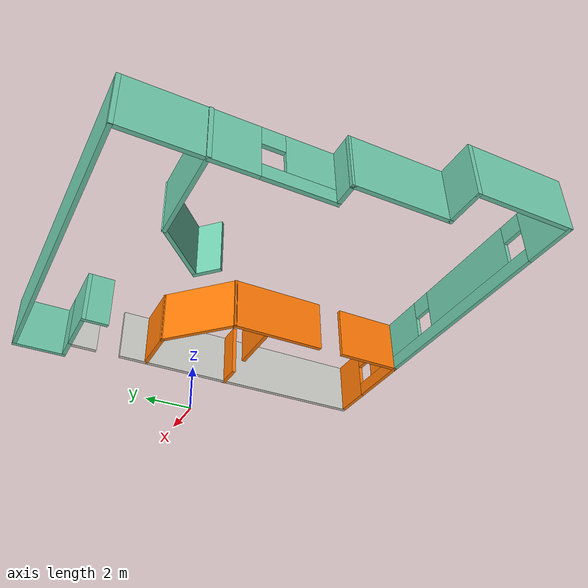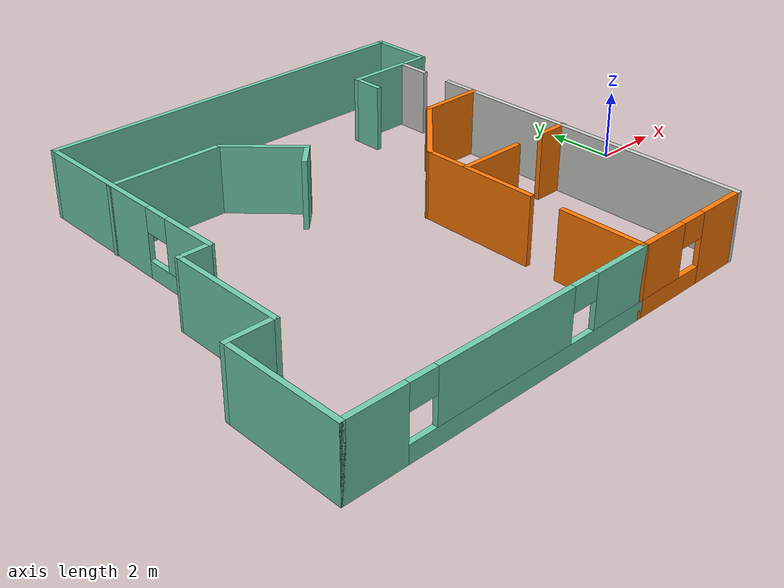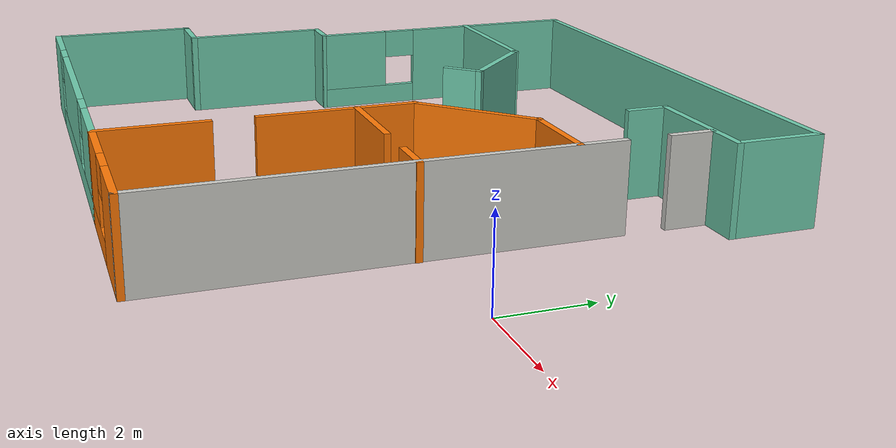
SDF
<?xml version='1.0'?>
<sdf version='1.6'>
  <model name='room'>
    <pose frame=''>-8.884 0.941221 0 0 -0 0</pose>
    <link name='Wall_0'>
      <collision name='Wall_0_Collision'>
        <geometry>
          <box>
            <size>12 0.15 2</size>
          </box>
        </geometry>
        <pose frame=''>0 0 1 0 -0 0</pose>
      </collision>
      <visual name='Wall_0_Visual'>
        <pose frame=''>0 0 1 0 -0 0</pose>
        <geometry>
          <box>
            <size>12 0.15 2</size>
          </box>
        </geometry>
        <material>
          <script>
            <uri>file://media/materials/scripts/gazebo.material</uri>
            <name>Gazebo/Grey</name>
          </script>
          <ambient>0.435294 0.796078 0.67451 1</ambient>
        </material>
        <meta>
          <layer>0</layer>
        </meta>
      </visual>
      <pose frame=''>1.071 6.85 0 0 0 -3.7e-05</pose>
    </link>
    <link name='Wall_14'>
      <collision name='Wall_14_Collision'>
        <geometry>
          <box>
            <size>2 0.15 2</size>
          </box>
        </geometry>
        <pose frame=''>0 0 1 0 -0 0</pose>
      </collision>
      <visual name='Wall_14_Visual'>
        <pose frame=''>0 0 1 0 -0 0</pose>
        <geometry>
          <box>
            <size>2 0.15 2</size>
          </box>
        </geometry>
        <material>
          <script>
            <uri>file://media/materials/scripts/gazebo.material</uri>
            <name>Gazebo/Grey</name>
          </script>
          <ambient>0.435294 0.796078 0.67451 1</ambient>
        </material>
        <meta>
          <layer>0</layer>
        </meta>
      </visual>
      <pose frame=''>6.996 5.92478 0 0 0 -1.5708</pose>
    </link>
    <link name='Wall_15'>
      <collision name='Wall_15_Collision'>
        <geometry>
          <box>
            <size>1 0.15 2</size>
          </box>
        </geometry>
        <pose frame=''>0 0 1 0 -0 0</pose>
      </collision>
      <visual name='Wall_15_Visual'>
        <pose frame=''>0 0 1 0 -0 0</pose>
        <geometry>
          <box>
            <size>1 0.15 2</size>
          </box>
        </geometry>
        <material>
          <script>
            <uri>file://media/materials/scripts/gazebo.material</uri>
            <name>Gazebo/Grey</name>
          </script>
          <ambient>0.435294 0.796078 0.67451 1</ambient>
        </material>
        <meta>
          <layer>0</layer>
        </meta>
      </visual>
      <pose frame=''>6.571 4.99978 0 0 -0 3.14159</pose>
    </link>
    <link name='Wall_17'>
      <pose frame=''>6.146 -0.925221 0 0 0 -1.5708</pose>
      <visual name='Wall_17_Visual_0'>
        <pose frame=''>-5.45484 0 1 0 -0 0</pose>
        <geometry>
          <box>
            <size>1.09032 0.15 2</size>
          </box>
        </geometry>
        <material>
          <script>
            <uri>file://media/materials/scripts/gazebo.material</uri>
            <name>Gazebo/CeilingTiled</name>
          </script>
          <ambient>1 1 1 1</ambient>
        </material>
        <meta>
          <layer>0</layer>
        </meta>
      </visual>
      <collision name='Wall_17_Collision_0'>
        <geometry>
          <box>
            <size>1.09032 0.15 2</size>
          </box>
        </geometry>
        <pose frame=''>-5.45484 0 1 0 -0 0</pose>
      </collision>
      <visual name='Wall_17_Visual_1'>
        <pose frame=''>0.995159 0 1 0 -0 0</pose>
        <geometry>
          <box>
            <size>10.0097 0.15 2</size>
          </box>
        </geometry>
        <material>
          <script>
            <uri>file://media/materials/scripts/gazebo.material</uri>
            <name>Gazebo/CeilingTiled</name>
          </script>
          <ambient>1 1 1 1</ambient>
        </material>
        <meta>
          <layer>0</layer>
        </meta>
      </visual>
      <collision name='Wall_17_Collision_1'>
        <geometry>
          <box>
            <size>10.0097 0.15 2</size>
          </box>
        </geometry>
        <pose frame=''>0.995159 0 1 0 -0 0</pose>
      </collision>
    </link>
    <link name='Wall_20'>
      <pose frame=''>4.221 -6.85022 0 0 -0 3.14159</pose>
      <visual name='Wall_20_Visual_0'>
        <pose frame=''>-1.19818 0 1 0 -0 0</pose>
        <geometry>
          <box>
            <size>1.60364 0.15 2</size>
          </box>
        </geometry>
        <material>
          <script>
            <uri>file://media/materials/scripts/gazebo.material</uri>
            <name>Gazebo/Grey</name>
          </script>
          <ambient>0.996078 0.47451 0.0196078 1</ambient>
        </material>
        <meta>
          <layer>0</layer>
        </meta>
      </visual>
      <collision name='Wall_20_Collision_0'>
        <geometry>
          <box>
            <size>1.60364 0.15 2</size>
          </box>
        </geometry>
        <pose frame=''>-1.19818 0 1 0 -0 0</pose>
      </collision>
      <visual name='Wall_20_Visual_1'>
        <pose frame=''>0.801822 0 0.25 0 -0 0</pose>
        <geometry>
          <box>
            <size>2.39636 0.15 0.5</size>
          </box>
        </geometry>
        <material>
          <script>
            <uri>file://media/materials/scripts/gazebo.material</uri>
            <name>Gazebo/Grey</name>
          </script>
          <ambient>0.996078 0.47451 0.0196078 1</ambient>
        </material>
        <meta>
          <layer>0</layer>
        </meta>
      </visual>
      <collision name='Wall_20_Collision_1'>
        <geometry>
          <box>
            <size>2.39636 0.15 0.5</size>
          </box>
        </geometry>
        <pose frame=''>0.801822 0 0.25 0 -0 0</pose>
      </collision>
      <visual name='Wall_20_Visual_2'>
        <pose frame=''>1.20182 0 1.25 0 -0 0</pose>
        <geometry>
          <box>
            <size>1.59636 0.15 1.5</size>
          </box>
        </geometry>
        <material>
          <script>
            <uri>file://media/materials/scripts/gazebo.material</uri>
            <name>Gazebo/Grey</name>
          </script>
          <ambient>0.996078 0.47451 0.0196078 1</ambient>
        </material>
        <meta>
          <layer>0</layer>
        </meta>
      </visual>
      <collision name='Wall_20_Collision_2'>
        <geometry>
          <box>
            <size>1.59636 0.15 1.5</size>
          </box>
        </geometry>
        <pose frame=''>1.20182 0 1.25 0 -0 0</pose>
      </collision>
      <visual name='Wall_20_Visual_3'>
        <pose frame=''>0.003644 0 1.65 0 -0 0</pose>
        <geometry>
          <box>
            <size>0.8 0.15 0.7</size>
          </box>
        </geometry>
        <material>
          <script>
            <uri>file://media/materials/scripts/gazebo.material</uri>
            <name>Gazebo/Grey</name>
          </script>
          <ambient>0.996078 0.47451 0.0196078 1</ambient>
        </material>
        <meta>
          <layer>0</layer>
        </meta>
      </visual>
      <collision name='Wall_20_Collision_3'>
        <geometry>
          <box>
            <size>0.8 0.15 0.7</size>
          </box>
        </geometry>
        <pose frame=''>0.003644 0 1.65 0 -0 0</pose>
      </collision>
    </link>
    <link name='Wall_21'>
      <pose frame=''>2.296 -3.42522 0 0 -0 1.5708</pose>
      <visual name='Wall_21_Visual_0'>
        <pose frame=''>-2.24804 0 1 0 -0 0</pose>
        <geometry>
          <box>
            <size>2.50392 0.15 2</size>
          </box>
        </geometry>
        <material>
          <script>
            <uri>file://media/materials/scripts/gazebo.material</uri>
            <name>Gazebo/Grey</name>
          </script>
          <ambient>0.996078 0.47451 0.0196078 1</ambient>
        </material>
        <meta>
          <layer>0</layer>
        </meta>
      </visual>
      <collision name='Wall_21_Collision_0'>
        <geometry>
          <box>
            <size>2.50392 0.15 2</size>
          </box>
        </geometry>
        <pose frame=''>-2.24804 0 1 0 -0 0</pose>
      </collision>
      <visual name='Wall_21_Visual_1'>
        <pose frame=''>1.70196 0 1 0 -0 0</pose>
        <geometry>
          <box>
            <size>3.59608 0.15 2</size>
          </box>
        </geometry>
        <material>
          <script>
            <uri>file://media/materials/scripts/gazebo.material</uri>
            <name>Gazebo/Grey</name>
          </script>
          <ambient>0.996078 0.47451 0.0196078 1</ambient>
        </material>
        <meta>
          <layer>0</layer>
        </meta>
      </visual>
      <collision name='Wall_21_Collision_1'>
        <geometry>
          <box>
            <size>3.59608 0.15 2</size>
          </box>
        </geometry>
        <pose frame=''>1.70196 0 1 0 -0 0</pose>
      </collision>
    </link>
    <link name='Wall_23'>
      <collision name='Wall_23_Collision'>
        <geometry>
          <box>
            <size>3 0.15 2</size>
          </box>
        </geometry>
        <pose frame=''>0 0 1 0 -0 0</pose>
      </collision>
      <visual name='Wall_23_Visual'>
        <pose frame=''>0 0 1 0 -0 0</pose>
        <geometry>
          <box>
            <size>3 0.15 2</size>
          </box>
        </geometry>
        <material>
          <script>
            <uri>file://media/materials/scripts/gazebo.material</uri>
            <name>Gazebo/Grey</name>
          </script>
          <ambient>0.996078 0.47451 0.0196078 1</ambient>
        </material>
        <meta>
          <layer>0</layer>
        </meta>
      </visual>
      <pose frame=''>3.3035 1.00728 0 0 -0 0.785398</pose>
    </link>
    <link name='Wall_25'>
      <collision name='Wall_25_Collision'>
        <geometry>
          <box>
            <size>1.98 0.15 2</size>
          </box>
        </geometry>
        <pose frame=''>0 0 1 0 -0 0</pose>
      </collision>
      <visual name='Wall_25_Visual'>
        <pose frame=''>0 0 1 0 -0 0</pose>
        <geometry>
          <box>
            <size>1.98 0.15 2</size>
          </box>
        </geometry>
        <material>
          <script>
            <uri>file://media/materials/scripts/gazebo.material</uri>
            <name>Gazebo/Grey</name>
          </script>
          <ambient>0.996078 0.47451 0.0196078 1</ambient>
        </material>
        <meta>
          <layer>0</layer>
        </meta>
      </visual>
      <pose frame=''>5.226 2.01478 0 0 -0 0</pose>
    </link>
    <link name='Wall_27'>
      <pose frame=''>-4.854 3.42522 0 0 0 -1.5708</pose>
      <visual name='Wall_27_Visual_0'>
        <pose frame=''>-1.294 0 1 0 -0 0</pose>
        <geometry>
          <box>
            <size>4.41201 0.15 2</size>
          </box>
        </geometry>
        <material>
          <script>
            <uri>file://media/materials/scripts/gazebo.material</uri>
            <name>Gazebo/Grey</name>
          </script>
          <ambient>0.435294 0.796078 0.67451 1</ambient>
        </material>
        <meta>
          <layer>0</layer>
        </meta>
      </visual>
      <collision name='Wall_27_Collision_0'>
        <geometry>
          <box>
            <size>4.41201 0.15 2</size>
          </box>
        </geometry>
        <pose frame=''>-1.294 0 1 0 -0 0</pose>
      </collision>
      <visual name='Wall_27_Visual_1'>
        <pose frame=''>2.20601 0 0.25 0 -0 0</pose>
        <geometry>
          <box>
            <size>2.58799 0.15 0.5</size>
          </box>
        </geometry>
        <material>
          <script>
            <uri>file://media/materials/scripts/gazebo.material</uri>
            <name>Gazebo/Grey</name>
          </script>
          <ambient>0.435294 0.796078 0.67451 1</ambient>
        </material>
        <meta>
          <layer>0</layer>
        </meta>
      </visual>
      <collision name='Wall_27_Collision_1'>
        <geometry>
          <box>
            <size>2.58799 0.15 0.5</size>
          </box>
        </geometry>
        <pose frame=''>2.20601 0 0.25 0 -0 0</pose>
      </collision>
      <visual name='Wall_27_Visual_2'>
        <pose frame=''>2.60601 0 1.25 0 -0 0</pose>
        <geometry>
          <box>
            <size>1.78799 0.15 1.5</size>
          </box>
        </geometry>
        <material>
          <script>
            <uri>file://media/materials/scripts/gazebo.material</uri>
            <name>Gazebo/Grey</name>
          </script>
          <ambient>0.435294 0.796078 0.67451 1</ambient>
        </material>
        <meta>
          <layer>0</layer>
        </meta>
      </visual>
      <collision name='Wall_27_Collision_2'>
        <geometry>
          <box>
            <size>1.78799 0.15 1.5</size>
          </box>
        </geometry>
        <pose frame=''>2.60601 0 1.25 0 -0 0</pose>
      </collision>
      <visual name='Wall_27_Visual_3'>
        <pose frame=''>1.31201 0 1.65 0 -0 0</pose>
        <geometry>
          <box>
            <size>0.8 0.15 0.7</size>
          </box>
        </geometry>
        <material>
          <script>
            <uri>file://media/materials/scripts/gazebo.material</uri>
            <name>Gazebo/Grey</name>
          </script>
          <ambient>0.435294 0.796078 0.67451 1</ambient>
        </material>
        <meta>
          <layer>0</layer>
        </meta>
      </visual>
      <collision name='Wall_27_Collision_3'>
        <geometry>
          <box>
            <size>0.8 0.15 0.7</size>
          </box>
        </geometry>
        <pose frame=''>1.31201 0 1.65 0 -0 0</pose>
      </collision>
    </link>
    <link name='Wall_29'>
      <collision name='Wall_29_Collision'>
        <geometry>
          <box>
            <size>1 0.15 2</size>
          </box>
        </geometry>
        <pose frame=''>0 0 1 0 -0 0</pose>
      </collision>
      <visual name='Wall_29_Visual'>
        <pose frame=''>0 0 1 0 -0 0</pose>
        <geometry>
          <box>
            <size>1 0.15 2</size>
          </box>
        </geometry>
        <material>
          <script>
            <uri>file://media/materials/scripts/gazebo.material</uri>
            <name>Gazebo/Grey</name>
          </script>
          <ambient>0.435294 0.796078 0.67451 1</ambient>
        </material>
        <meta>
          <layer>0</layer>
        </meta>
      </visual>
      <pose frame=''>-5.279 -1e-06 0 0 0 -3.14108</pose>
    </link>
    <link name='Wall_31'>
      <collision name='Wall_31_Collision'>
        <geometry>
          <box>
            <size>3.54955 0.15 2</size>
          </box>
        </geometry>
        <pose frame=''>0 0 1 0 -0 0</pose>
      </collision>
      <visual name='Wall_31_Visual'>
        <pose frame=''>0 0 1 0 -0 0</pose>
        <geometry>
          <box>
            <size>3.54955 0.15 2</size>
          </box>
        </geometry>
        <material>
          <script>
            <uri>file://media/materials/scripts/gazebo.material</uri>
            <name>Gazebo/Grey</name>
          </script>
          <ambient>0.435294 0.796078 0.67451 1</ambient>
        </material>
        <meta>
          <layer>0</layer>
        </meta>
      </visual>
      <pose frame=''>-5.704 -1.69972 0 0 0 -1.5708</pose>
    </link>
    <link name='Wall_35'>
      <collision name='Wall_35_Collision'>
        <geometry>
          <box>
            <size>1.442 0.15 2</size>
          </box>
        </geometry>
        <pose frame=''>0 0 1 0 -0 0</pose>
      </collision>
      <visual name='Wall_35_Visual'>
        <pose frame=''>0 0 1 0 -0 0</pose>
        <geometry>
          <box>
            <size>1.442 0.15 2</size>
          </box>
        </geometry>
        <material>
          <script>
            <uri>file://media/materials/scripts/gazebo.material</uri>
            <name>Gazebo/Grey</name>
          </script>
          <ambient>0.435294 0.796078 0.67451 1</ambient>
        </material>
        <meta>
          <layer>0</layer>
        </meta>
      </visual>
      <pose frame=''>-6.35 -3.39922 0 0 -0 3.14159</pose>
    </link>
    <link name='Wall_37'>
      <collision name='Wall_37_Collision'>
        <geometry>
          <box>
            <size>3.601 0.15 2</size>
          </box>
        </geometry>
        <pose frame=''>0 0 1 0 -0 0</pose>
      </collision>
      <visual name='Wall_37_Visual'>
        <pose frame=''>0 0 1 0 -0 0</pose>
        <geometry>
          <box>
            <size>3.601 0.15 2</size>
          </box>
        </geometry>
        <material>
          <script>
            <uri>file://media/materials/scripts/gazebo.material</uri>
            <name>Gazebo/Grey</name>
          </script>
          <ambient>0.435294 0.796078 0.67451 1</ambient>
        </material>
        <meta>
          <layer>0</layer>
        </meta>
      </visual>
      <pose frame=''>-6.996 -5.12472 0 0 0 -1.5708</pose>
    </link>
    <link name='Wall_39'>
      <pose frame=''>-2.35 -6.85022 0 0 -0 0</pose>
      <visual name='Wall_39_Visual_0'>
        <pose frame=''>-3.82497 0 1 0 -0 0</pose>
        <geometry>
          <box>
            <size>1.79207 0.15 2</size>
          </box>
        </geometry>
        <material>
          <script>
            <uri>file://media/materials/scripts/gazebo.material</uri>
            <name>Gazebo/Grey</name>
          </script>
          <ambient>0.435294 0.796078 0.67451 1</ambient>
        </material>
        <meta>
          <layer>0</layer>
        </meta>
      </visual>
      <collision name='Wall_39_Collision_0'>
        <geometry>
          <box>
            <size>1.79207 0.15 2</size>
          </box>
        </geometry>
        <pose frame=''>-3.82497 0 1 0 -0 0</pose>
      </collision>
      <visual name='Wall_39_Visual_1'>
        <pose frame=''>0.896033 0 0.25 0 -0 0</pose>
        <geometry>
          <box>
            <size>7.64993 0.15 0.5</size>
          </box>
        </geometry>
        <material>
          <script>
            <uri>file://media/materials/scripts/gazebo.material</uri>
            <name>Gazebo/Grey</name>
          </script>
          <ambient>0.435294 0.796078 0.67451 1</ambient>
        </material>
        <meta>
          <layer>0</layer>
        </meta>
      </visual>
      <collision name='Wall_39_Collision_1'>
        <geometry>
          <box>
            <size>7.64993 0.15 0.5</size>
          </box>
        </geometry>
        <pose frame=''>0.896033 0 0.25 0 -0 0</pose>
      </collision>
      <visual name='Wall_39_Visual_2'>
        <pose frame=''>-0.02648 0 1.25 0 -0 0</pose>
        <geometry>
          <box>
            <size>4.20491 0.15 1.5</size>
          </box>
        </geometry>
        <material>
          <script>
            <uri>file://media/materials/scripts/gazebo.material</uri>
            <name>Gazebo/Grey</name>
          </script>
          <ambient>0.435294 0.796078 0.67451 1</ambient>
        </material>
        <meta>
          <layer>0</layer>
        </meta>
      </visual>
      <collision name='Wall_39_Collision_2'>
        <geometry>
          <box>
            <size>4.20491 0.15 1.5</size>
          </box>
        </geometry>
        <pose frame=''>-0.02648 0 1.25 0 -0 0</pose>
      </collision>
      <visual name='Wall_39_Visual_3'>
        <pose frame=''>3.79849 0 1.25 0 -0 0</pose>
        <geometry>
          <box>
            <size>1.84503 0.15 1.5</size>
          </box>
        </geometry>
        <material>
          <script>
            <uri>file://media/materials/scripts/gazebo.material</uri>
            <name>Gazebo/Grey</name>
          </script>
          <ambient>0.435294 0.796078 0.67451 1</ambient>
        </material>
        <meta>
          <layer>0</layer>
        </meta>
      </visual>
      <collision name='Wall_39_Collision_3'>
        <geometry>
          <box>
            <size>1.84503 0.15 1.5</size>
          </box>
        </geometry>
        <pose frame=''>3.79849 0 1.25 0 -0 0</pose>
      </collision>
      <visual name='Wall_39_Visual_4'>
        <pose frame=''>-2.52893 0 1.65 0 -0 0</pose>
        <geometry>
          <box>
            <size>0.8 0.15 0.7</size>
          </box>
        </geometry>
        <material>
          <script>
            <uri>file://media/materials/scripts/gazebo.material</uri>
            <name>Gazebo/Grey</name>
          </script>
          <ambient>0.435294 0.796078 0.67451 1</ambient>
        </material>
        <meta>
          <layer>0</layer>
        </meta>
      </visual>
      <collision name='Wall_39_Collision_4'>
        <geometry>
          <box>
            <size>0.8 0.15 0.7</size>
          </box>
        </geometry>
        <pose frame=''>-2.52893 0 1.65 0 -0 0</pose>
      </collision>
      <visual name='Wall_39_Visual_5'>
        <pose frame=''>2.47597 0 1.65 0 -0 0</pose>
        <geometry>
          <box>
            <size>0.8 0.15 0.7</size>
          </box>
        </geometry>
        <material>
          <script>
            <uri>file://media/materials/scripts/gazebo.material</uri>
            <name>Gazebo/Grey</name>
          </script>
          <ambient>0.435294 0.796078 0.67451 1</ambient>
        </material>
        <meta>
          <layer>0</layer>
        </meta>
      </visual>
      <collision name='Wall_39_Collision_5'>
        <geometry>
          <box>
            <size>0.8 0.15 0.7</size>
          </box>
        </geometry>
        <pose frame=''>2.47597 0 1.65 0 -0 0</pose>
      </collision>
    </link>
    <link name='Wall_41'>
      <collision name='Wall_41_Collision'>
        <geometry>
          <box>
            <size>3.5 0.15 2</size>
          </box>
        </geometry>
        <pose frame=''>0 0 1 0 -0 0</pose>
      </collision>
      <visual name='Wall_41_Visual'>
        <pose frame=''>0 0 1 0 -0 0</pose>
        <geometry>
          <box>
            <size>3.5 0.15 2</size>
          </box>
        </geometry>
        <material>
          <script>
            <uri>file://media/materials/scripts/gazebo.material</uri>
            <name>Gazebo/Grey</name>
          </script>
          <ambient>0.435294 0.796078 0.67451 1</ambient>
        </material>
        <meta>
          <layer>0</layer>
        </meta>
      </visual>
      <pose frame=''>-3.20995 4.10594 0 0 -0 0</pose>
    </link>
    <link name='Wall_45'>
      <collision name='Wall_45_Collision'>
        <geometry>
          <box>
            <size>2.5 0.15 2</size>
          </box>
        </geometry>
        <pose frame=''>0 0 1 0 -0 0</pose>
      </collision>
      <visual name='Wall_45_Visual'>
        <pose frame=''>0 0 1 0 -0 0</pose>
        <geometry>
          <box>
            <size>2.5 0.15 2</size>
          </box>
        </geometry>
        <material>
          <script>
            <uri>file://media/materials/scripts/gazebo.material</uri>
            <name>Gazebo/Grey</name>
          </script>
          <ambient>0.435294 0.796078 0.67451 1</ambient>
        </material>
        <meta>
          <layer>0</layer>
        </meta>
      </visual>
      <pose frame=''>-0.704102 3.27509 0 0 0 -0.785398</pose>
    </link>
    <link name='Wall_49'>
      <collision name='Wall_49_Collision'>
        <geometry>
          <box>
            <size>1 0.15 2</size>
          </box>
        </geometry>
        <pose frame=''>0 0 1 0 -0 0</pose>
      </collision>
      <visual name='Wall_49_Visual'>
        <pose frame=''>0 0 1 0 -0 0</pose>
        <geometry>
          <box>
            <size>1 0.15 2</size>
          </box>
        </geometry>
        <material>
          <script>
            <uri>file://media/materials/scripts/gazebo.material</uri>
            <name>Gazebo/Grey</name>
          </script>
          <ambient>0.435294 0.796078 0.67451 1</ambient>
        </material>
        <meta>
          <layer>0</layer>
        </meta>
      </visual>
      <pose frame=''>-0.173771 2.14372 0 0 0 -2.35619</pose>
    </link>
    <link name='Wall_51'>
      <pose frame=''>4.245 -1.29622 0 0 -0 0</pose>
      <visual name='Wall_51_Visual_0'>
        <pose frame=''>-0.951819 0 1 0 -0 0</pose>
        <geometry>
          <box>
            <size>2.09636 0.15 2</size>
          </box>
        </geometry>
        <material>
          <script>
            <uri>file://media/materials/scripts/gazebo.material</uri>
            <name>Gazebo/Grey</name>
          </script>
          <ambient>0.996078 0.47451 0.0196078 1</ambient>
        </material>
        <meta>
          <layer>0</layer>
        </meta>
      </visual>
      <collision name='Wall_51_Collision_0'>
        <geometry>
          <box>
            <size>2.09636 0.15 2</size>
          </box>
        </geometry>
        <pose frame=''>-0.951819 0 1 0 -0 0</pose>
      </collision>
      <visual name='Wall_51_Visual_1'>
        <pose frame=''>1.49818 0 1 0 -0 0</pose>
        <geometry>
          <box>
            <size>1.00364 0.15 2</size>
          </box>
        </geometry>
        <material>
          <script>
            <uri>file://media/materials/scripts/gazebo.material</uri>
            <name>Gazebo/Grey</name>
          </script>
          <ambient>0.996078 0.47451 0.0196078 1</ambient>
        </material>
        <meta>
          <layer>0</layer>
        </meta>
      </visual>
      <collision name='Wall_51_Collision_1'>
        <geometry>
          <box>
            <size>1.00364 0.15 2</size>
          </box>
        </geometry>
        <pose frame=''>1.49818 0 1 0 -0 0</pose>
      </collision>
    </link>
    <link name='Wall_53'>
      <collision name='Wall_53_Collision'>
        <geometry>
          <box>
            <size>2 0.15 2</size>
          </box>
        </geometry>
        <pose frame=''>0 0 1 0 -0 0</pose>
      </collision>
      <visual name='Wall_53_Visual'>
        <pose frame=''>0 0 1 0 -0 0</pose>
        <geometry>
          <box>
            <size>2 0.15 2</size>
          </box>
        </geometry>
        <material>
          <script>
            <uri>file://media/materials/scripts/gazebo.material</uri>
            <name>Gazebo/Grey</name>
          </script>
          <ambient>0.435294 0.796078 0.67451 1</ambient>
        </material>
        <meta>
          <layer>0</layer>
        </meta>
      </visual>
      <pose frame=''>5.221 4.99978 0 0 -0 3.14159</pose>
    </link>
    <link name='Wall_54'>
      <collision name='Wall_54_Collision'>
        <geometry>
          <box>
            <size>1 0.15 2</size>
          </box>
        </geometry>
        <pose frame=''>0 0 1 0 -0 0</pose>
      </collision>
      <visual name='Wall_54_Visual'>
        <pose frame=''>0 0 1 0 -0 0</pose>
        <geometry>
          <box>
            <size>1 0.15 2</size>
          </box>
        </geometry>
        <material>
          <script>
            <uri>file://media/materials/scripts/gazebo.material</uri>
            <name>Gazebo/Grey</name>
          </script>
          <ambient>0.435294 0.796078 0.67451 1</ambient>
        </material>
        <meta>
          <layer>0</layer>
        </meta>
      </visual>
      <pose frame=''>4.296 4.57478 0 0 0 -1.5708</pose>
    </link>
    <static>1</static>
  </model>
</sdf>
